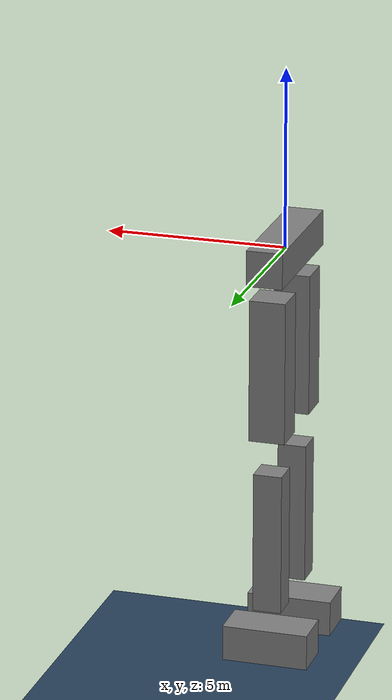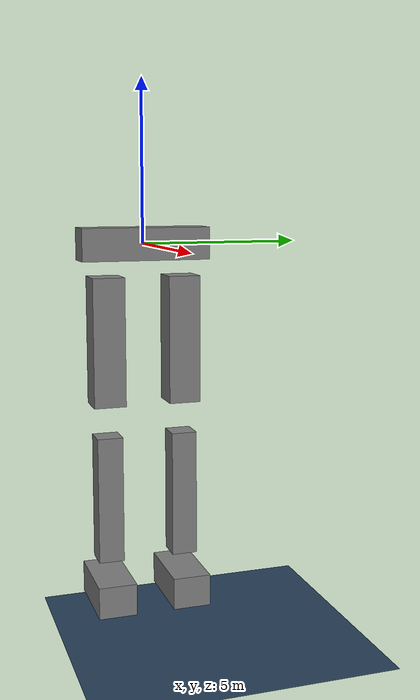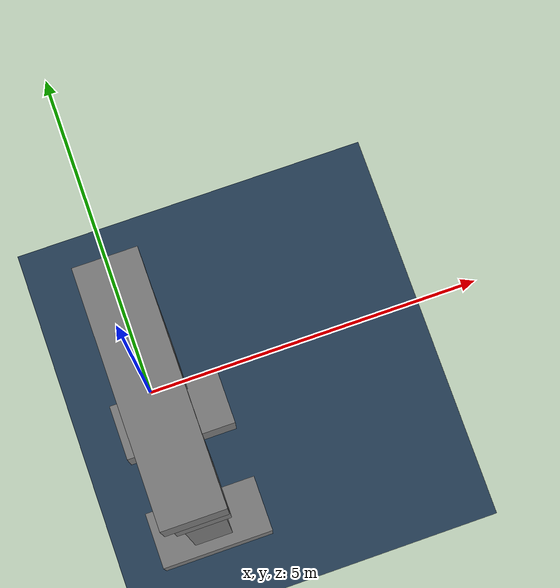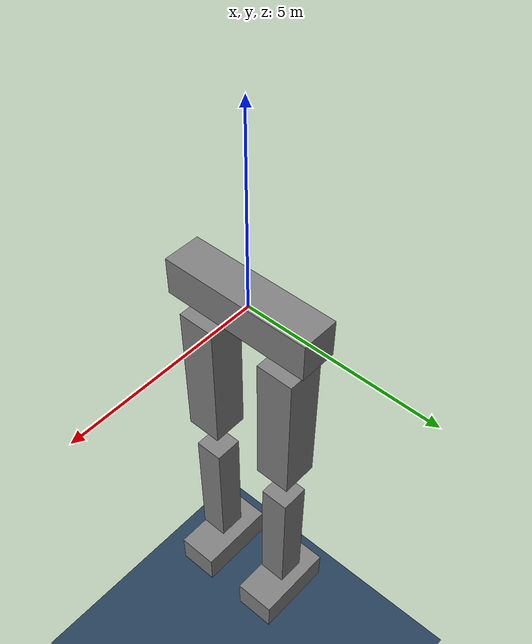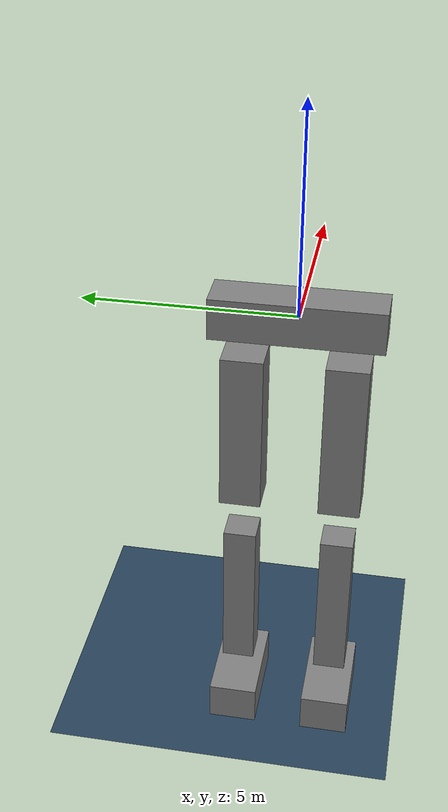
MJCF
<?xml version="1.0"?>
<mujoco model="jvrc1">

    <compiler angle="radian" meshdir="../meshes" texturedir="../meshes" />

    <size njmax="500" nconmax="100" />

    <option timestep="0.001" iterations="50" tolerance="1e-10" solver="Newton" jacobian="dense" cone="pyramidal" />

    <asset>
        <texture name="grid" type="2d" builtin="checker" rgb1=".1 .2 .3"
        rgb2=".2 .3 .4" width="300" height="300"/>
        <material name="grid" texture="grid" texrepeat="8 8" reflectance=".2"/>
    </asset>

    <worldbody>

        <geom pos="0 0 -12" size="100 100 .01" type="plane" material="grid"/>

        <light directional="false" diffuse="0.2 0.2 0.2" specular="0 0 0" pos="0 0 2" dir="0 0 -1" castshadow="false" />
        <light mode="targetbodycom" directional="false" diffuse=".8 .8 .8" specular="0.3 0.3 0.3" pos="0 0 4.0" dir="0 0 -1" />

        <body name="pelvis"  pos="0 0 0">

            <joint name="ROOT" type="free" pos="0 0 0"/>
            <geom type="box" size=".5 2 .5"/>

            <body name="thigh_l" pos="0 -1.2 -3">
                <joint name="HIP_L" type="ball" pos="0 0 0"/>
                <geom type="box" size="0.5 0.5 2"/>

                <body name="calf_l" pos="0 0 -5">
                    <joint name="KNEE_L" type="hinge" pos="0 0 0" axis="0 1 0"/>
                    <geom type="box" size="0.4 0.4 2"/>

                    <body name="foot_l" pos="0. 0 -3">
                        <joint name="ANKLE_L" type="hinge" pos="0 0 0" axis="0 1 0"/>
                        <geom type="box" size="1.2 0.6 .5"/>
                    </body>
                </body>

            </body>

            <body name="thigh_r" pos="0 1.2 -3">

                <joint name="HIP_R" type="ball" pos="0 0 0"/>
                <geom type="box" size="0.5 0.5 2"/>

                <body name="calf_r" pos="0 0 -5">
                    <joint name="KNEE_R" type="hinge" pos="0 0 0" axis="0 1 0"/>
                    <geom type="box" size="0.4 0.4 2"/>

                    <body name="foot_r" pos="0 0 -3">
                        <joint name="ANKLE_R" type="hinge" pos="0 0 0" axis="0 1 0"/>
                        <geom type="box" size="1.2 0.6 .5"/>
                    </body>
                </body>

            </body>

        </body>

    </worldbody>

</mujoco>
